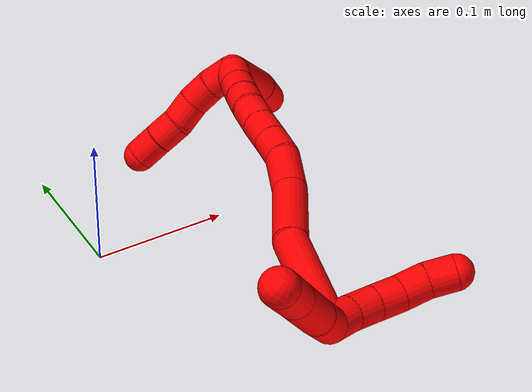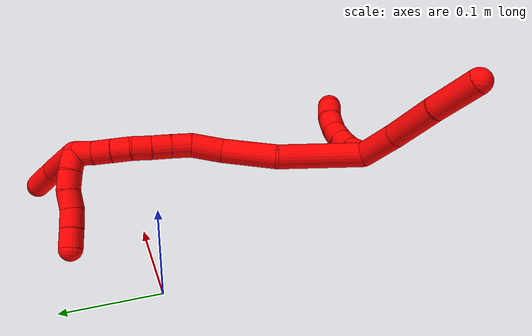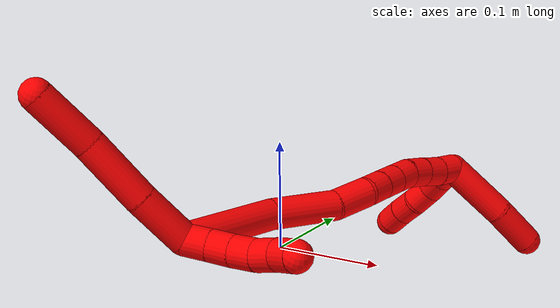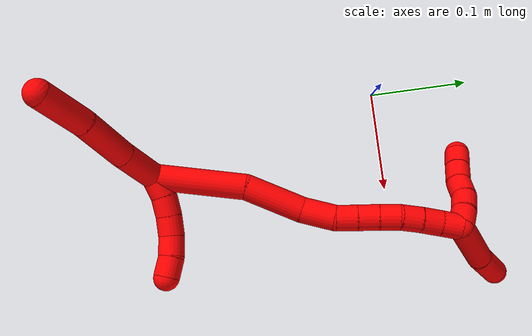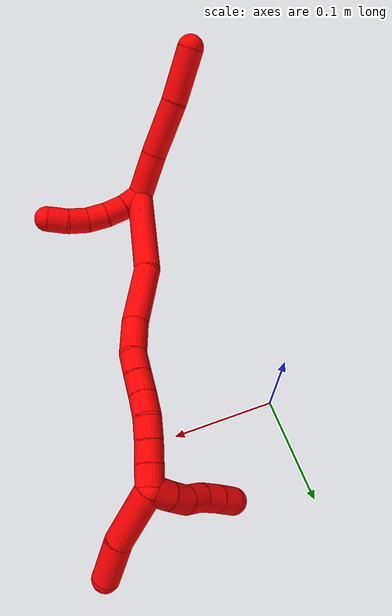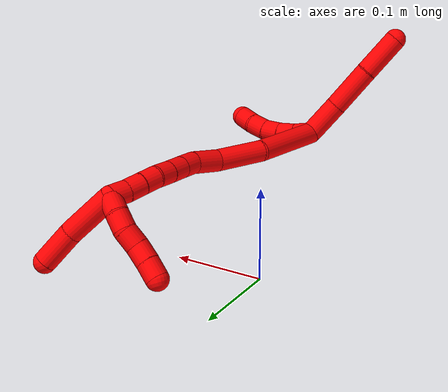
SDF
<sdf version="1.7">
 <world name="default">
  <model name="2">
   <static>0</static>
   <link name="2">
    <collision name="collision-cylinder-e_1_2_8">
     <pose>-0.015726 -0.011758 0.010777 0.828892 -0.778349 -0.35698</pose>
     <geometry><cylinder><radius>0.0125</radius><length>0.044797</length></cylinder></geometry>
     <surface>
      <friction><ode><mu>1.16</mu><mu2>1.16</mu2><slip1>0</slip1><slip2>0</slip2></ode></friction>
      <contact><ode><kp>1e+06</kp><kd>1</kd><max_vel>0</max_vel><min_depth>0.001</min_depth></ode></contact>
     </surface>
    </collision>
    <visual name="visual-cylinder-e_1_2_8">
     <pose>-0.015726 -0.011758 0.010777 0.828892 -0.778349 -0.35698</pose>
     <geometry><cylinder><radius>0.0125</radius><length>0.044797</length></cylinder></geometry>
     <material><ambient>1 0 0 1</ambient></material>
    </visual>
    <collision name="collision-cylinder-e_2_8_9">
     <pose>-0.051787 -0.035919 0.0347 0.75637 -0.844188 -0.353137</pose>
     <geometry><cylinder><radius>0.0125</radius><length>0.054413</length></cylinder></geometry>
     <surface>
      <friction><ode><mu>1.16</mu><mu2>1.16</mu2><slip1>0</slip1><slip2>0</slip2></ode></friction>
      <contact><ode><kp>1e+06</kp><kd>1</kd><max_vel>0</max_vel><min_depth>0.001</min_depth></ode></contact>
     </surface>
    </collision>
    <visual name="visual-cylinder-e_2_8_9">
     <pose>-0.051787 -0.035919 0.0347 0.75637 -0.844188 -0.353137</pose>
     <geometry><cylinder><radius>0.0125</radius><length>0.054413</length></cylinder></geometry>
     <material><ambient>1 0 0 1</ambient></material>
    </visual>
    <collision name="collision-cylinder-e_3_9_6">
     <pose>-0.089348 -0.06207 0.060463 0.828216 -0.74547 -0.340394</pose>
     <geometry><cylinder><radius>0.0125</radius><length>0.05079</length></cylinder></geometry>
     <surface>
      <friction><ode><mu>1.16</mu><mu2>1.16</mu2><slip1>0</slip1><slip2>0</slip2></ode></friction>
      <contact><ode><kp>1e+06</kp><kd>1</kd><max_vel>0</max_vel><min_depth>0.001</min_depth></ode></contact>
     </surface>
    </collision>
    <visual name="visual-cylinder-e_3_9_6">
     <pose>-0.089348 -0.06207 0.060463 0.828216 -0.74547 -0.340394</pose>
     <geometry><cylinder><radius>0.0125</radius><length>0.05079</length></cylinder></geometry>
     <material><ambient>1 0 0 1</ambient></material>
    </visual>
    <collision name="collision-cylinder-e_1_2_10">
     <pose>0.007878 0.00562 0.00252 -1.14926 0.907185 -0.611529</pose>
     <geometry><cylinder><radius>0.0125</radius><length>0.02</length></cylinder></geometry>
     <surface>
      <friction><ode><mu>1.16</mu><mu2>1.16</mu2><slip1>0</slip1><slip2>0</slip2></ode></friction>
      <contact><ode><kp>1e+06</kp><kd>1</kd><max_vel>0</max_vel><min_depth>0.001</min_depth></ode></contact>
     </surface>
    </collision>
    <visual name="visual-cylinder-e_1_2_10">
     <pose>0.007878 0.00562 0.00252 -1.14926 0.907185 -0.611529</pose>
     <geometry><cylinder><radius>0.0125</radius><length>0.02</length></cylinder></geometry>
     <material><ambient>1 0 0 1</ambient></material>
    </visual>
    <collision name="collision-cylinder-e_2_10_11">
     <pose>0.02407 0.015219 0.008919 -0.798078 0.981669 -0.443316</pose>
     <geometry><cylinder><radius>0.0125</radius><length>0.02</length></cylinder></geometry>
     <surface>
      <friction><ode><mu>1.16</mu><mu2>1.16</mu2><slip1>0</slip1><slip2>0</slip2></ode></friction>
      <contact><ode><kp>1e+06</kp><kd>1</kd><max_vel>0</max_vel><min_depth>0.001</min_depth></ode></contact>
     </surface>
    </collision>
    <visual name="visual-cylinder-e_2_10_11">
     <pose>0.02407 0.015219 0.008919 -0.798078 0.981669 -0.443316</pose>
     <geometry><cylinder><radius>0.0125</radius><length>0.02</length></cylinder></geometry>
     <material><ambient>1 0 0 1</ambient></material>
    </visual>
    <collision name="collision-cylinder-e_3_11_12">
     <pose>0.040503 0.02233 0.017725 -0.566269 0.947379 -0.29611</pose>
     <geometry><cylinder><radius>0.0125</radius><length>0.02</length></cylinder></geometry>
     <surface>
      <friction><ode><mu>1.16</mu><mu2>1.16</mu2><slip1>0</slip1><slip2>0</slip2></ode></friction>
      <contact><ode><kp>1e+06</kp><kd>1</kd><max_vel>0</max_vel><min_depth>0.001</min_depth></ode></contact>
     </surface>
    </collision>
    <visual name="visual-cylinder-e_3_11_12">
     <pose>0.040503 0.02233 0.017725 -0.566269 0.947379 -0.29611</pose>
     <geometry><cylinder><radius>0.0125</radius><length>0.02</length></cylinder></geometry>
     <material><ambient>1 0 0 1</ambient></material>
    </visual>
    <collision name="collision-cylinder-e_4_12_13">
     <pose>0.055596 0.027654 0.029475 -0.310842 0.771814 -0.127144</pose>
     <geometry><cylinder><radius>0.0125</radius><length>0.02</length></cylinder></geometry>
     <surface>
      <friction><ode><mu>1.16</mu><mu2>1.16</mu2><slip1>0</slip1><slip2>0</slip2></ode></friction>
      <contact><ode><kp>1e+06</kp><kd>1</kd><max_vel>0</max_vel><min_depth>0.001</min_depth></ode></contact>
     </surface>
    </collision>
    <visual name="visual-cylinder-e_4_12_13">
     <pose>0.055596 0.027654 0.029475 -0.310842 0.771814 -0.127144</pose>
     <geometry><cylinder><radius>0.0125</radius><length>0.02</length></cylinder></geometry>
     <material><ambient>1 0 0 1</ambient></material>
    </visual>
    <collision name="collision-cylinder-e_5_13_5">
     <pose>0.069757 0.029791 0.043251 0.007925 0.801896 0.00336</pose>
     <geometry><cylinder><radius>0.0125</radius><length>0.02</length></cylinder></geometry>
     <surface>
      <friction><ode><mu>1.16</mu><mu2>1.16</mu2><slip1>0</slip1><slip2>0</slip2></ode></friction>
      <contact><ode><kp>1e+06</kp><kd>1</kd><max_vel>0</max_vel><min_depth>0.001</min_depth></ode></contact>
     </surface>
    </collision>
    <visual name="visual-cylinder-e_5_13_5">
     <pose>0.069757 0.029791 0.043251 0.007925 0.801896 0.00336</pose>
     <geometry><cylinder><radius>0.0125</radius><length>0.02</length></cylinder></geometry>
     <material><ambient>1 0 0 1</ambient></material>
    </visual>
    <collision name="collision-cylinder-e_1_2_14">
     <pose>-0.000623 0.043596 -0.004992 -1.6848 -0.014208 0.015927</pose>
     <geometry><cylinder><radius>0.0125</radius><length>0.08777</length></cylinder></geometry>
     <surface>
      <friction><ode><mu>1.16</mu><mu2>1.16</mu2><slip1>0</slip1><slip2>0</slip2></ode></friction>
      <contact><ode><kp>1e+06</kp><kd>1</kd><max_vel>0</max_vel><min_depth>0.001</min_depth></ode></contact>
     </surface>
    </collision>
    <visual name="visual-cylinder-e_1_2_14">
     <pose>-0.000623 0.043596 -0.004992 -1.6848 -0.014208 0.015927</pose>
     <geometry><cylinder><radius>0.0125</radius><length>0.08777</length></cylinder></geometry>
     <material><ambient>1 0 0 1</ambient></material>
    </visual>
    <collision name="collision-cylinder-e_2_14_15">
     <pose>0.005345 0.115308 -0.009441 -1.55148 0.230263 -0.225896</pose>
     <geometry><cylinder><radius>0.0125</radius><length>0.057768</length></cylinder></geometry>
     <surface>
      <friction><ode><mu>1.16</mu><mu2>1.16</mu2><slip1>0</slip1><slip2>0</slip2></ode></friction>
      <contact><ode><kp>1e+06</kp><kd>1</kd><max_vel>0</max_vel><min_depth>0.001</min_depth></ode></contact>
     </surface>
    </collision>
    <visual name="visual-cylinder-e_2_14_15">
     <pose>0.005345 0.115308 -0.009441 -1.55148 0.230263 -0.225896</pose>
     <geometry><cylinder><radius>0.0125</radius><length>0.057768</length></cylinder></geometry>
     <material><ambient>1 0 0 1</ambient></material>
    </visual>
    <collision name="collision-cylinder-e_3_15_16">
     <pose>0.012053 0.159973 -0.007478 -1.48525 0.006957 -0.006386</pose>
     <geometry><cylinder><radius>0.0125</radius><length>0.033219</length></cylinder></geometry>
     <surface>
      <friction><ode><mu>1.16</mu><mu2>1.16</mu2><slip1>0</slip1><slip2>0</slip2></ode></friction>
      <contact><ode><kp>1e+06</kp><kd>1</kd><max_vel>0</max_vel><min_depth>0.001</min_depth></ode></contact>
     </surface>
    </collision>
    <visual name="visual-cylinder-e_3_15_16">
     <pose>0.012053 0.159973 -0.007478 -1.48525 0.006957 -0.006386</pose>
     <geometry><cylinder><radius>0.0125</radius><length>0.033219</length></cylinder></geometry>
     <material><ambient>1 0 0 1</ambient></material>
    </visual>
    <collision name="collision-cylinder-e_4_16_17">
     <pose>0.010649 0.18669 -0.007508 -1.71234 -0.146859 0.16917</pose>
     <geometry><cylinder><radius>0.0125</radius><length>0.020766</length></cylinder></geometry>
     <surface>
      <friction><ode><mu>1.16</mu><mu2>1.16</mu2><slip1>0</slip1><slip2>0</slip2></ode></friction>
      <contact><ode><kp>1e+06</kp><kd>1</kd><max_vel>0</max_vel><min_depth>0.001</min_depth></ode></contact>
     </surface>
    </collision>
    <visual name="visual-cylinder-e_4_16_17">
     <pose>0.010649 0.18669 -0.007508 -1.71234 -0.146859 0.16917</pose>
     <geometry><cylinder><radius>0.0125</radius><length>0.020766</length></cylinder></geometry>
     <material><ambient>1 0 0 1</ambient></material>
    </visual>
    <collision name="collision-cylinder-e_5_17_18">
     <pose>0.007581 0.206844 -0.010571 -1.73105 -0.151911 0.178307</pose>
     <geometry><cylinder><radius>0.0125</radius><length>0.020465</length></cylinder></geometry>
     <surface>
      <friction><ode><mu>1.16</mu><mu2>1.16</mu2><slip1>0</slip1><slip2>0</slip2></ode></friction>
      <contact><ode><kp>1e+06</kp><kd>1</kd><max_vel>0</max_vel><min_depth>0.001</min_depth></ode></contact>
     </surface>
    </collision>
    <visual name="visual-cylinder-e_5_17_18">
     <pose>0.007581 0.206844 -0.010571 -1.73105 -0.151911 0.178307</pose>
     <geometry><cylinder><radius>0.0125</radius><length>0.020465</length></cylinder></geometry>
     <material><ambient>1 0 0 1</ambient></material>
    </visual>
    <collision name="collision-cylinder-e_6_18_19">
     <pose>0.004731 0.226661 -0.013464 -1.70007 -0.130591 0.148604</pose>
     <geometry><cylinder><radius>0.0125</radius><length>0.020001</length></cylinder></geometry>
     <surface>
      <friction><ode><mu>1.16</mu><mu2>1.16</mu2><slip1>0</slip1><slip2>0</slip2></ode></friction>
      <contact><ode><kp>1e+06</kp><kd>1</kd><max_vel>0</max_vel><min_depth>0.001</min_depth></ode></contact>
     </surface>
    </collision>
    <visual name="visual-cylinder-e_6_18_19">
     <pose>0.004731 0.226661 -0.013464 -1.70007 -0.130591 0.148604</pose>
     <geometry><cylinder><radius>0.0125</radius><length>0.020001</length></cylinder></geometry>
     <material><ambient>1 0 0 1</ambient></material>
    </visual>
    <collision name="collision-cylinder-e_7_19_20">
     <pose>0.004019 0.246264 -0.01679 -1.77745 0.0591 -0.072764</pose>
     <geometry><cylinder><radius>0.0125</radius><length>0.020001</length></cylinder></geometry>
     <surface>
      <friction><ode><mu>1.16</mu><mu2>1.16</mu2><slip1>0</slip1><slip2>0</slip2></ode></friction>
      <contact><ode><kp>1e+06</kp><kd>1</kd><max_vel>0</max_vel><min_depth>0.001</min_depth></ode></contact>
     </surface>
    </collision>
    <visual name="visual-cylinder-e_7_19_20">
     <pose>0.004019 0.246264 -0.01679 -1.77745 0.0591 -0.072764</pose>
     <geometry><cylinder><radius>0.0125</radius><length>0.020001</length></cylinder></geometry>
     <material><ambient>1 0 0 1</ambient></material>
    </visual>
    <collision name="collision-cylinder-e_8_20_21">
     <pose>0.00581 0.265757 -0.020865 -1.77632 0.12025 -0.147812</pose>
     <geometry><cylinder><radius>0.0125</radius><length>0.020007</length></cylinder></geometry>
     <surface>
      <friction><ode><mu>1.16</mu><mu2>1.16</mu2><slip1>0</slip1><slip2>0</slip2></ode></friction>
      <contact><ode><kp>1e+06</kp><kd>1</kd><max_vel>0</max_vel><min_depth>0.001</min_depth></ode></contact>
     </surface>
    </collision>
    <visual name="visual-cylinder-e_8_20_21">
     <pose>0.00581 0.265757 -0.020865 -1.77632 0.12025 -0.147812</pose>
     <geometry><cylinder><radius>0.0125</radius><length>0.020007</length></cylinder></geometry>
     <material><ambient>1 0 0 1</ambient></material>
    </visual>
    <collision name="collision-cylinder-e_9_21_1">
     <pose>0.007693 0.285395 -0.024006 -1.68264 0.068393 -0.076497</pose>
     <geometry><cylinder><radius>0.0125</radius><length>0.020003</length></cylinder></geometry>
     <surface>
      <friction><ode><mu>1.16</mu><mu2>1.16</mu2><slip1>0</slip1><slip2>0</slip2></ode></friction>
      <contact><ode><kp>1e+06</kp><kd>1</kd><max_vel>0</max_vel><min_depth>0.001</min_depth></ode></contact>
     </surface>
    </collision>
    <visual name="visual-cylinder-e_9_21_1">
     <pose>0.007693 0.285395 -0.024006 -1.68264 0.068393 -0.076497</pose>
     <geometry><cylinder><radius>0.0125</radius><length>0.020003</length></cylinder></geometry>
     <material><ambient>1 0 0 1</ambient></material>
    </visual>
    <collision name="collision-cylinder-e_1_1_22">
     <pose>0.031271 0.309894 -0.035982 -2.21101 0.899557 -1.53166</pose>
     <geometry><cylinder><radius>0.0125</radius><length>0.058475</length></cylinder></geometry>
     <surface>
      <friction><ode><mu>1.16</mu><mu2>1.16</mu2><slip1>0</slip1><slip2>0</slip2></ode></friction>
      <contact><ode><kp>1e+06</kp><kd>1</kd><max_vel>0</max_vel><min_depth>0.001</min_depth></ode></contact>
     </surface>
    </collision>
    <visual name="visual-cylinder-e_1_1_22">
     <pose>0.031271 0.309894 -0.035982 -2.21101 0.899557 -1.53166</pose>
     <geometry><cylinder><radius>0.0125</radius><length>0.058475</length></cylinder></geometry>
     <material><ambient>1 0 0 1</ambient></material>
    </visual>
    <collision name="collision-cylinder-e_2_22_4">
     <pose>0.068141 0.335945 -0.057056 -2.2983 0.738374 -1.42355</pose>
     <geometry><cylinder><radius>0.0125</radius><length>0.041525</length></cylinder></geometry>
     <surface>
      <friction><ode><mu>1.16</mu><mu2>1.16</mu2><slip1>0</slip1><slip2>0</slip2></ode></friction>
      <contact><ode><kp>1e+06</kp><kd>1</kd><max_vel>0</max_vel><min_depth>0.001</min_depth></ode></contact>
     </surface>
    </collision>
    <visual name="visual-cylinder-e_2_22_4">
     <pose>0.068141 0.335945 -0.057056 -2.2983 0.738374 -1.42355</pose>
     <geometry><cylinder><radius>0.0125</radius><length>0.041525</length></cylinder></geometry>
     <material><ambient>1 0 0 1</ambient></material>
    </visual>
    <collision name="collision-cylinder-e_1_1_23">
     <pose>0.005048 0.296086 -0.034517 -3.05925 -0.339334 2.66962</pose>
     <geometry><cylinder><radius>0.0125</radius><length>0.02</length></cylinder></geometry>
     <surface>
      <friction><ode><mu>1.16</mu><mu2>1.16</mu2><slip1>0</slip1><slip2>0</slip2></ode></friction>
      <contact><ode><kp>1e+06</kp><kd>1</kd><max_vel>0</max_vel><min_depth>0.001</min_depth></ode></contact>
     </surface>
    </collision>
    <visual name="visual-cylinder-e_1_1_23">
     <pose>0.005048 0.296086 -0.034517 -3.05925 -0.339334 2.66962</pose>
     <geometry><cylinder><radius>0.0125</radius><length>0.02</length></cylinder></geometry>
     <material><ambient>1 0 0 1</ambient></material>
    </visual>
    <collision name="collision-cylinder-e_2_23_24">
     <pose>-0.000558 0.296624 -0.053649 3.11712 -0.229811 -2.93035</pose>
     <geometry><cylinder><radius>0.0125</radius><length>0.02</length></cylinder></geometry>
     <surface>
      <friction><ode><mu>1.16</mu><mu2>1.16</mu2><slip1>0</slip1><slip2>0</slip2></ode></friction>
      <contact><ode><kp>1e+06</kp><kd>1</kd><max_vel>0</max_vel><min_depth>0.001</min_depth></ode></contact>
     </surface>
    </collision>
    <visual name="visual-cylinder-e_2_23_24">
     <pose>-0.000558 0.296624 -0.053649 3.11712 -0.229811 -2.93035</pose>
     <geometry><cylinder><radius>0.0125</radius><length>0.02</length></cylinder></geometry>
     <material><ambient>1 0 0 1</ambient></material>
    </visual>
    <collision name="collision-cylinder-e_3_24_25">
     <pose>-0.004913 0.293256 -0.072651 2.81592 -0.209231 -1.13734</pose>
     <geometry><cylinder><radius>0.0125</radius><length>0.02</length></cylinder></geometry>
     <surface>
      <friction><ode><mu>1.16</mu><mu2>1.16</mu2><slip1>0</slip1><slip2>0</slip2></ode></friction>
      <contact><ode><kp>1e+06</kp><kd>1</kd><max_vel>0</max_vel><min_depth>0.001</min_depth></ode></contact>
     </surface>
    </collision>
    <visual name="visual-cylinder-e_3_24_25">
     <pose>-0.004913 0.293256 -0.072651 2.81592 -0.209231 -1.13734</pose>
     <geometry><cylinder><radius>0.0125</radius><length>0.02</length></cylinder></geometry>
     <material><ambient>1 0 0 1</ambient></material>
    </visual>
    <collision name="collision-cylinder-e_4_25_26">
     <pose>-0.010216 0.288993 -0.091316 3.0216 -0.328447 -2.44607</pose>
     <geometry><cylinder><radius>0.0125</radius><length>0.02</length></cylinder></geometry>
     <surface>
      <friction><ode><mu>1.16</mu><mu2>1.16</mu2><slip1>0</slip1><slip2>0</slip2></ode></friction>
      <contact><ode><kp>1e+06</kp><kd>1</kd><max_vel>0</max_vel><min_depth>0.001</min_depth></ode></contact>
     </surface>
    </collision>
    <visual name="visual-cylinder-e_4_25_26">
     <pose>-0.010216 0.288993 -0.091316 3.0216 -0.328447 -2.44607</pose>
     <geometry><cylinder><radius>0.0125</radius><length>0.02</length></cylinder></geometry>
     <material><ambient>1 0 0 1</ambient></material>
    </visual>
    <collision name="collision-cylinder-e_5_26_3">
     <pose>-0.01625 0.28709 -0.11028 3.06129 -0.284599 -2.59482</pose>
     <geometry><cylinder><radius>0.0125</radius><length>0.02</length></cylinder></geometry>
     <surface>
      <friction><ode><mu>1.16</mu><mu2>1.16</mu2><slip1>0</slip1><slip2>0</slip2></ode></friction>
      <contact><ode><kp>1e+06</kp><kd>1</kd><max_vel>0</max_vel><min_depth>0.001</min_depth></ode></contact>
     </surface>
    </collision>
    <visual name="visual-cylinder-e_5_26_3">
     <pose>-0.01625 0.28709 -0.11028 3.06129 -0.284599 -2.59482</pose>
     <geometry><cylinder><radius>0.0125</radius><length>0.02</length></cylinder></geometry>
     <material><ambient>1 0 0 1</ambient></material>
    </visual>
    <collision name="collision-sphere-3">
     <pose>-0.019057 0.28632 -0.119847 0 -0 0</pose>
     <geometry><sphere><radius>0.0125</radius></sphere></geometry>
     <surface>
      <friction><ode><mu>1.16</mu><mu2>1.16</mu2><slip1>0</slip1><slip2>0</slip2></ode></friction>
      <contact><ode><kp>1e+06</kp><kd>1</kd><max_vel>0</max_vel><min_depth>0.001</min_depth></ode></contact>
     </surface>
    </collision>
    <visual name="visual-sphere-3">
     <pose>-0.019057 0.28632 -0.119847 0 -0 0</pose>
     <geometry><sphere><radius>0.0125</radius></sphere></geometry>
     <material><ambient>1 0 0 1</ambient></material>
    </visual>
    <collision name="collision-sphere-26">
     <pose>-0.013442 0.28786 -0.100714 0 -0 0</pose>
     <geometry><sphere><radius>0.0125</radius></sphere></geometry>
     <surface>
      <friction><ode><mu>1.16</mu><mu2>1.16</mu2><slip1>0</slip1><slip2>0</slip2></ode></friction>
      <contact><ode><kp>1e+06</kp><kd>1</kd><max_vel>0</max_vel><min_depth>0.001</min_depth></ode></contact>
     </surface>
    </collision>
    <visual name="visual-sphere-26">
     <pose>-0.013442 0.28786 -0.100714 0 -0 0</pose>
     <geometry><sphere><radius>0.0125</radius></sphere></geometry>
     <material><ambient>1 0 0 1</ambient></material>
    </visual>
    <collision name="collision-sphere-25">
     <pose>-0.00699 0.290126 -0.081919 0 -0 0</pose>
     <geometry><sphere><radius>0.0125</radius></sphere></geometry>
     <surface>
      <friction><ode><mu>1.16</mu><mu2>1.16</mu2><slip1>0</slip1><slip2>0</slip2></ode></friction>
      <contact><ode><kp>1e+06</kp><kd>1</kd><max_vel>0</max_vel><min_depth>0.001</min_depth></ode></contact>
     </surface>
    </collision>
    <visual name="visual-sphere-25">
     <pose>-0.00699 0.290126 -0.081919 0 -0 0</pose>
     <geometry><sphere><radius>0.0125</radius></sphere></geometry>
     <material><ambient>1 0 0 1</ambient></material>
    </visual>
    <collision name="collision-sphere-24">
     <pose>-0.002836 0.296385 -0.063383 0 -0 0</pose>
     <geometry><sphere><radius>0.0125</radius></sphere></geometry>
     <surface>
      <friction><ode><mu>1.16</mu><mu2>1.16</mu2><slip1>0</slip1><slip2>0</slip2></ode></friction>
      <contact><ode><kp>1e+06</kp><kd>1</kd><max_vel>0</max_vel><min_depth>0.001</min_depth></ode></contact>
     </surface>
    </collision>
    <visual name="visual-sphere-24">
     <pose>-0.002836 0.296385 -0.063383 0 -0 0</pose>
     <geometry><sphere><radius>0.0125</radius></sphere></geometry>
     <material><ambient>1 0 0 1</ambient></material>
    </visual>
    <collision name="collision-sphere-23">
     <pose>0.00172 0.296862 -0.043915 0 -0 0</pose>
     <geometry><sphere><radius>0.0125</radius></sphere></geometry>
     <surface>
      <friction><ode><mu>1.16</mu><mu2>1.16</mu2><slip1>0</slip1><slip2>0</slip2></ode></friction>
      <contact><ode><kp>1e+06</kp><kd>1</kd><max_vel>0</max_vel><min_depth>0.001</min_depth></ode></contact>
     </surface>
    </collision>
    <visual name="visual-sphere-23">
     <pose>0.00172 0.296862 -0.043915 0 -0 0</pose>
     <geometry><sphere><radius>0.0125</radius></sphere></geometry>
     <material><ambient>1 0 0 1</ambient></material>
    </visual>
    <collision name="collision-sphere-4">
     <pose>0.082116 0.347413 -0.067268 0 -0 0</pose>
     <geometry><sphere><radius>0.0125</radius></sphere></geometry>
     <surface>
      <friction><ode><mu>1.16</mu><mu2>1.16</mu2><slip1>0</slip1><slip2>0</slip2></ode></friction>
      <contact><ode><kp>1e+06</kp><kd>1</kd><max_vel>0</max_vel><min_depth>0.001</min_depth></ode></contact>
     </surface>
    </collision>
    <visual name="visual-sphere-4">
     <pose>0.082116 0.347413 -0.067268 0 -0 0</pose>
     <geometry><sphere><radius>0.0125</radius></sphere></geometry>
     <material><ambient>1 0 0 1</ambient></material>
    </visual>
    <collision name="collision-sphere-22">
     <pose>0.054166 0.324477 -0.046845 0 -0 0</pose>
     <geometry><sphere><radius>0.0125</radius></sphere></geometry>
     <surface>
      <friction><ode><mu>1.16</mu><mu2>1.16</mu2><slip1>0</slip1><slip2>0</slip2></ode></friction>
      <contact><ode><kp>1e+06</kp><kd>1</kd><max_vel>0</max_vel><min_depth>0.001</min_depth></ode></contact>
     </surface>
    </collision>
    <visual name="visual-sphere-22">
     <pose>0.054166 0.324477 -0.046845 0 -0 0</pose>
     <geometry><sphere><radius>0.0125</radius></sphere></geometry>
     <material><ambient>1 0 0 1</ambient></material>
    </visual>
    <collision name="collision-sphere-1">
     <pose>0.008377 0.295311 -0.025119 0 -0 0</pose>
     <geometry><sphere><radius>0.0125</radius></sphere></geometry>
     <surface>
      <friction><ode><mu>1.16</mu><mu2>1.16</mu2><slip1>0</slip1><slip2>0</slip2></ode></friction>
      <contact><ode><kp>1e+06</kp><kd>1</kd><max_vel>0</max_vel><min_depth>0.001</min_depth></ode></contact>
     </surface>
    </collision>
    <visual name="visual-sphere-1">
     <pose>0.008377 0.295311 -0.025119 0 -0 0</pose>
     <geometry><sphere><radius>0.0125</radius></sphere></geometry>
     <material><ambient>1 0 0 1</ambient></material>
    </visual>
    <collision name="collision-sphere-21">
     <pose>0.00701 0.275479 -0.022892 0 -0 0</pose>
     <geometry><sphere><radius>0.0125</radius></sphere></geometry>
     <surface>
      <friction><ode><mu>1.16</mu><mu2>1.16</mu2><slip1>0</slip1><slip2>0</slip2></ode></friction>
      <contact><ode><kp>1e+06</kp><kd>1</kd><max_vel>0</max_vel><min_depth>0.001</min_depth></ode></contact>
     </surface>
    </collision>
    <visual name="visual-sphere-21">
     <pose>0.00701 0.275479 -0.022892 0 -0 0</pose>
     <geometry><sphere><radius>0.0125</radius></sphere></geometry>
     <material><ambient>1 0 0 1</ambient></material>
    </visual>
    <collision name="collision-sphere-11">
     <pose>0.032384 0.019198 0.012798 0 -0 0</pose>
     <geometry><sphere><radius>0.0125</radius></sphere></geometry>
     <surface>
      <friction><ode><mu>1.16</mu><mu2>1.16</mu2><slip1>0</slip1><slip2>0</slip2></ode></friction>
      <contact><ode><kp>1e+06</kp><kd>1</kd><max_vel>0</max_vel><min_depth>0.001</min_depth></ode></contact>
     </surface>
    </collision>
    <visual name="visual-sphere-11">
     <pose>0.032384 0.019198 0.012798 0 -0 0</pose>
     <geometry><sphere><radius>0.0125</radius></sphere></geometry>
     <material><ambient>1 0 0 1</ambient></material>
    </visual>
    <collision name="collision-sphere-10">
     <pose>0.015755 0.011241 0.005041 0 -0 0</pose>
     <geometry><sphere><radius>0.0125</radius></sphere></geometry>
     <surface>
      <friction><ode><mu>1.16</mu><mu2>1.16</mu2><slip1>0</slip1><slip2>0</slip2></ode></friction>
      <contact><ode><kp>1e+06</kp><kd>1</kd><max_vel>0</max_vel><min_depth>0.001</min_depth></ode></contact>
     </surface>
    </collision>
    <visual name="visual-sphere-10">
     <pose>0.015755 0.011241 0.005041 0 -0 0</pose>
     <geometry><sphere><radius>0.0125</radius></sphere></geometry>
     <material><ambient>1 0 0 1</ambient></material>
    </visual>
    <collision name="collision-sphere-6">
     <pose>-0.106574 -0.075817 0.073081 0 -0 0</pose>
     <geometry><sphere><radius>0.0125</radius></sphere></geometry>
     <surface>
      <friction><ode><mu>1.16</mu><mu2>1.16</mu2><slip1>0</slip1><slip2>0</slip2></ode></friction>
      <contact><ode><kp>1e+06</kp><kd>1</kd><max_vel>0</max_vel><min_depth>0.001</min_depth></ode></contact>
     </surface>
    </collision>
    <visual name="visual-sphere-6">
     <pose>-0.106574 -0.075817 0.073081 0 -0 0</pose>
     <geometry><sphere><radius>0.0125</radius></sphere></geometry>
     <material><ambient>1 0 0 1</ambient></material>
    </visual>
    <collision name="collision-sphere-9">
     <pose>-0.072122 -0.048324 0.047846 0 -0 0</pose>
     <geometry><sphere><radius>0.0125</radius></sphere></geometry>
     <surface>
      <friction><ode><mu>1.16</mu><mu2>1.16</mu2><slip1>0</slip1><slip2>0</slip2></ode></friction>
      <contact><ode><kp>1e+06</kp><kd>1</kd><max_vel>0</max_vel><min_depth>0.001</min_depth></ode></contact>
     </surface>
    </collision>
    <visual name="visual-sphere-9">
     <pose>-0.072122 -0.048324 0.047846 0 -0 0</pose>
     <geometry><sphere><radius>0.0125</radius></sphere></geometry>
     <material><ambient>1 0 0 1</ambient></material>
    </visual>
    <collision name="collision-sphere-2">
     <geometry><sphere><radius>0.0125</radius></sphere></geometry>
     <surface>
      <friction><ode><mu>1.16</mu><mu2>1.16</mu2><slip1>0</slip1><slip2>0</slip2></ode></friction>
      <contact><ode><kp>1e+06</kp><kd>1</kd><max_vel>0</max_vel><min_depth>0.001</min_depth></ode></contact>
     </surface>
    </collision>
    <visual name="visual-sphere-2">
     <geometry><sphere><radius>0.0125</radius></sphere></geometry>
     <material><ambient>1 0 0 1</ambient></material>
    </visual>
    <collision name="collision-sphere-19">
     <pose>0.003428 0.236494 -0.014742 0 -0 0</pose>
     <geometry><sphere><radius>0.0125</radius></sphere></geometry>
     <surface>
      <friction><ode><mu>1.16</mu><mu2>1.16</mu2><slip1>0</slip1><slip2>0</slip2></ode></friction>
      <contact><ode><kp>1e+06</kp><kd>1</kd><max_vel>0</max_vel><min_depth>0.001</min_depth></ode></contact>
     </surface>
    </collision>
    <visual name="visual-sphere-19">
     <pose>0.003428 0.236494 -0.014742 0 -0 0</pose>
     <geometry><sphere><radius>0.0125</radius></sphere></geometry>
     <material><ambient>1 0 0 1</ambient></material>
    </visual>
    <collision name="collision-sphere-8">
     <pose>-0.031452 -0.023515 0.021554 0 -0 0</pose>
     <geometry><sphere><radius>0.0125</radius></sphere></geometry>
     <surface>
      <friction><ode><mu>1.16</mu><mu2>1.16</mu2><slip1>0</slip1><slip2>0</slip2></ode></friction>
      <contact><ode><kp>1e+06</kp><kd>1</kd><max_vel>0</max_vel><min_depth>0.001</min_depth></ode></contact>
     </surface>
    </collision>
    <visual name="visual-sphere-8">
     <pose>-0.031452 -0.023515 0.021554 0 -0 0</pose>
     <geometry><sphere><radius>0.0125</radius></sphere></geometry>
     <material><ambient>1 0 0 1</ambient></material>
    </visual>
    <collision name="collision-sphere-12">
     <pose>0.048622 0.025462 0.022652 0 -0 0</pose>
     <geometry><sphere><radius>0.0125</radius></sphere></geometry>
     <surface>
      <friction><ode><mu>1.16</mu><mu2>1.16</mu2><slip1>0</slip1><slip2>0</slip2></ode></friction>
      <contact><ode><kp>1e+06</kp><kd>1</kd><max_vel>0</max_vel><min_depth>0.001</min_depth></ode></contact>
     </surface>
    </collision>
    <visual name="visual-sphere-12">
     <pose>0.048622 0.025462 0.022652 0 -0 0</pose>
     <geometry><sphere><radius>0.0125</radius></sphere></geometry>
     <material><ambient>1 0 0 1</ambient></material>
    </visual>
    <collision name="collision-sphere-13">
     <pose>0.06257 0.029846 0.036298 0 -0 0</pose>
     <geometry><sphere><radius>0.0125</radius></sphere></geometry>
     <surface>
      <friction><ode><mu>1.16</mu><mu2>1.16</mu2><slip1>0</slip1><slip2>0</slip2></ode></friction>
      <contact><ode><kp>1e+06</kp><kd>1</kd><max_vel>0</max_vel><min_depth>0.001</min_depth></ode></contact>
     </surface>
    </collision>
    <visual name="visual-sphere-13">
     <pose>0.06257 0.029846 0.036298 0 -0 0</pose>
     <geometry><sphere><radius>0.0125</radius></sphere></geometry>
     <material><ambient>1 0 0 1</ambient></material>
    </visual>
    <collision name="collision-sphere-5">
     <pose>0.076944 0.029736 0.050204 0 -0 0</pose>
     <geometry><sphere><radius>0.0125</radius></sphere></geometry>
     <surface>
      <friction><ode><mu>1.16</mu><mu2>1.16</mu2><slip1>0</slip1><slip2>0</slip2></ode></friction>
      <contact><ode><kp>1e+06</kp><kd>1</kd><max_vel>0</max_vel><min_depth>0.001</min_depth></ode></contact>
     </surface>
    </collision>
    <visual name="visual-sphere-5">
     <pose>0.076944 0.029736 0.050204 0 -0 0</pose>
     <geometry><sphere><radius>0.0125</radius></sphere></geometry>
     <material><ambient>1 0 0 1</ambient></material>
    </visual>
    <collision name="collision-sphere-14">
     <pose>-0.001247 0.087192 -0.009984 0 -0 0</pose>
     <geometry><sphere><radius>0.0125</radius></sphere></geometry>
     <surface>
      <friction><ode><mu>1.16</mu><mu2>1.16</mu2><slip1>0</slip1><slip2>0</slip2></ode></friction>
      <contact><ode><kp>1e+06</kp><kd>1</kd><max_vel>0</max_vel><min_depth>0.001</min_depth></ode></contact>
     </surface>
    </collision>
    <visual name="visual-sphere-14">
     <pose>-0.001247 0.087192 -0.009984 0 -0 0</pose>
     <geometry><sphere><radius>0.0125</radius></sphere></geometry>
     <material><ambient>1 0 0 1</ambient></material>
    </visual>
    <collision name="collision-sphere-15">
     <pose>0.011938 0.143424 -0.008898 0 -0 0</pose>
     <geometry><sphere><radius>0.0125</radius></sphere></geometry>
     <surface>
      <friction><ode><mu>1.16</mu><mu2>1.16</mu2><slip1>0</slip1><slip2>0</slip2></ode></friction>
      <contact><ode><kp>1e+06</kp><kd>1</kd><max_vel>0</max_vel><min_depth>0.001</min_depth></ode></contact>
     </surface>
    </collision>
    <visual name="visual-sphere-15">
     <pose>0.011938 0.143424 -0.008898 0 -0 0</pose>
     <geometry><sphere><radius>0.0125</radius></sphere></geometry>
     <material><ambient>1 0 0 1</ambient></material>
    </visual>
    <collision name="collision-sphere-16">
     <pose>0.012169 0.176521 -0.006059 0 -0 0</pose>
     <geometry><sphere><radius>0.0125</radius></sphere></geometry>
     <surface>
      <friction><ode><mu>1.16</mu><mu2>1.16</mu2><slip1>0</slip1><slip2>0</slip2></ode></friction>
      <contact><ode><kp>1e+06</kp><kd>1</kd><max_vel>0</max_vel><min_depth>0.001</min_depth></ode></contact>
     </surface>
    </collision>
    <visual name="visual-sphere-16">
     <pose>0.012169 0.176521 -0.006059 0 -0 0</pose>
     <geometry><sphere><radius>0.0125</radius></sphere></geometry>
     <material><ambient>1 0 0 1</ambient></material>
    </visual>
    <collision name="collision-sphere-17">
     <pose>0.00913 0.196859 -0.008957 0 -0 0</pose>
     <geometry><sphere><radius>0.0125</radius></sphere></geometry>
     <surface>
      <friction><ode><mu>1.16</mu><mu2>1.16</mu2><slip1>0</slip1><slip2>0</slip2></ode></friction>
      <contact><ode><kp>1e+06</kp><kd>1</kd><max_vel>0</max_vel><min_depth>0.001</min_depth></ode></contact>
     </surface>
    </collision>
    <visual name="visual-sphere-17">
     <pose>0.00913 0.196859 -0.008957 0 -0 0</pose>
     <geometry><sphere><radius>0.0125</radius></sphere></geometry>
     <material><ambient>1 0 0 1</ambient></material>
    </visual>
    <collision name="collision-sphere-18">
     <pose>0.006033 0.216829 -0.012185 0 -0 0</pose>
     <geometry><sphere><radius>0.0125</radius></sphere></geometry>
     <surface>
      <friction><ode><mu>1.16</mu><mu2>1.16</mu2><slip1>0</slip1><slip2>0</slip2></ode></friction>
      <contact><ode><kp>1e+06</kp><kd>1</kd><max_vel>0</max_vel><min_depth>0.001</min_depth></ode></contact>
     </surface>
    </collision>
    <visual name="visual-sphere-18">
     <pose>0.006033 0.216829 -0.012185 0 -0 0</pose>
     <geometry><sphere><radius>0.0125</radius></sphere></geometry>
     <material><ambient>1 0 0 1</ambient></material>
    </visual>
    <collision name="collision-sphere-20">
     <pose>0.00461 0.256035 -0.018838 0 -0 0</pose>
     <geometry><sphere><radius>0.0125</radius></sphere></geometry>
     <surface>
      <friction><ode><mu>1.16</mu><mu2>1.16</mu2><slip1>0</slip1><slip2>0</slip2></ode></friction>
      <contact><ode><kp>1e+06</kp><kd>1</kd><max_vel>0</max_vel><min_depth>0.001</min_depth></ode></contact>
     </surface>
    </collision>
    <visual name="visual-sphere-20">
     <pose>0.00461 0.256035 -0.018838 0 -0 0</pose>
     <geometry><sphere><radius>0.0125</radius></sphere></geometry>
     <material><ambient>1 0 0 1</ambient></material>
    </visual>
    <inertial>
     <pose>0.001989 0.136116 -0.009799 0 -0 0</pose>
     <mass>0.75</mass>
     <inertia><ixx>8.5e-05</ixx><ixy>0</ixy><ixz>0</ixz><iyy>4e-05</iyy><iyz>0</iyz><izz>-8.9e-05</izz></inertia>
    </inertial>
   </link>
   <pose>0.055908 -0.224547 0.084171 0.092912 0.552634 -0.274432</pose>
  </model>
 </world>
</sdf>
